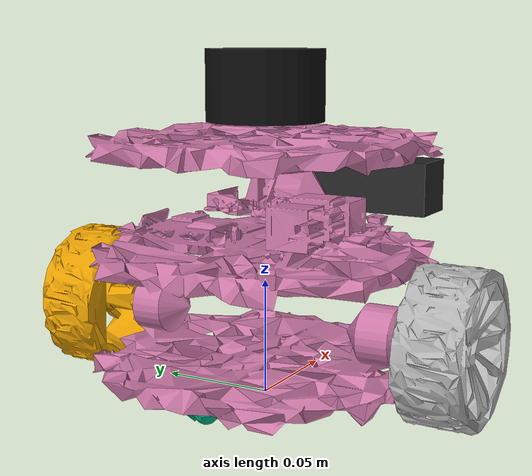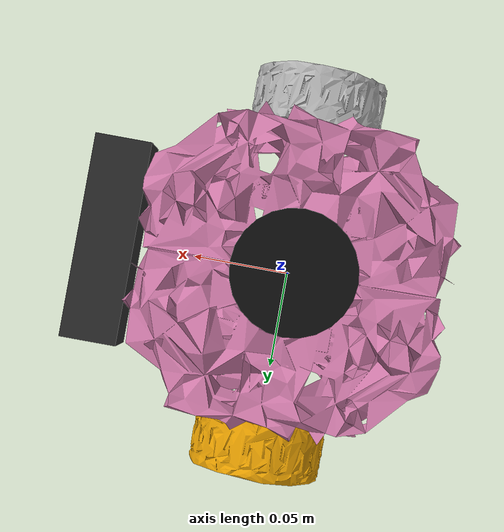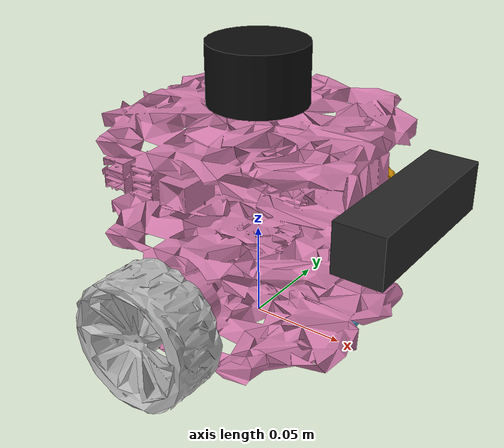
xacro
<?xml version="1.0"?>
<robot xmlns:xacro="http://www.ros.org/wiki/xacro" name="carebro">

    <!-- true  -> Gazebo Fortress (ROS 2 Humble, ign_ros2_control)
         false -> Gazebo Harmonic (ROS 2 Jazzy,  gz_ros2_control)   -->
    <xacro:arg name="is_ignition" default="true"/>

    <xacro:include filename="carebro_gazebo.xacro"/>
    <xacro:include filename="carebro_ros2_control.xacro"/>
    <xacro:include filename="carebro_lidar.xacro"/>
    <xacro:include filename="carebro_imu.xacro"/>
    <xacro:include filename="carebro_realsense.xacro"/>

    <link name="base_footprint"/>

    <!-- ===================== Base ===================== -->
    <link name="base_link">
        <visual>
            <origin rpy="0 0 0" xyz="0 0 0"/>
            <geometry>
                <mesh filename="package://carebro_description/meshes/base_link.stl"/>
            </geometry>
        </visual>
        <!-- Simple box instead of the 270k-triangle mesh: much faster physics.
             Bounding box of the mesh: x +-0.069, y +-0.079, z -0.024 .. 0.079 -->
        <collision>
            <origin rpy="0 0 0" xyz="0 0 0.0277"/>
            <geometry>
                <box size="0.14 0.16 0.1033"/>
            </geometry>
        </collision>
        <inertial>
            <origin xyz="0 0 0.04" rpy="0.0 0.25 0.3"/>
            <mass value="8.2573504e-01"/>
            <inertia ixx="2.2124416e-02" ixy="-1.2294101e-04" ixz="3.4938785e-04"
                     iyy="2.1193702e-02" iyz="-5.0120904e-05"
                     izz="2.0064271e-02"/>
        </inertial>
    </link>

    <joint name="base_joint" type="fixed">
        <parent link="base_footprint"/>
        <child link="base_link"/>
        <origin rpy="0 0 0" xyz="0 0 0.033"/>
    </joint>

    <!-- ===================== Wheels ===================== -->
    <link name="wheel_right_link">
        <visual>
            <origin rpy="1.57 0 0" xyz="0 0 0"/>
            <geometry>
                <mesh filename="package://carebro_description/meshes/wheel_right_link.stl"/>
            </geometry>
        </visual>
        <collision>
            <origin rpy="1.57 0 0" xyz="0 -0.015 0"/>
            <geometry>
                <sphere radius="0.033"/>
            </geometry>
        </collision>
        <inertial>
            <origin xyz="0 -0.014 0" rpy="0 0 0"/>
            <mass value="0.0530086090966721"/>
            <inertia ixx="1.88176298336665E-05" ixy="-4.8444933029987E-10" ixz="1.88163708851143E-08"
                     iyy="3.11510738647764E-05" iyz="-6.93560663069607E-11"
                     izz="1.8801969558182E-05"/>
        </inertial>
    </link>

    <joint name="wheel_right_joint" type="continuous">
        <parent link="base_link"/>
        <child link="wheel_right_link"/>
        <origin rpy="0 0 0" xyz="0 -0.07 0"/>
        <axis xyz="0 1 0"/>
    </joint>

    <link name="wheel_left_link">
        <visual>
            <origin rpy="-1.57 0 0" xyz="0 0 0"/>
            <geometry>
                <mesh filename="package://carebro_description/meshes/wheel_left_link.stl"/>
            </geometry>
        </visual>
        <collision>
            <origin rpy="1.57 0 0" xyz="0 0.015 0"/>
            <geometry>
                <sphere radius="0.033"/>
            </geometry>
        </collision>
        <inertial>
            <origin xyz="0 0.014 0" rpy="0 0 0"/>
            <mass value="0.0530086043217644"/>
            <inertia ixx="1.8792911368909E-05" ixy="3.31256392204584E-10" ixz="-1.14082001662767E-08"
                     iyy="3.11510738759073E-05" iyz="-3.60499245082192E-10"
                     izz="1.88266886146847E-05"/>
        </inertial>
    </link>

    <joint name="wheel_left_joint" type="continuous">
        <parent link="base_link"/>
        <child link="wheel_left_link"/>
        <origin rpy="0 0 0" xyz="0 0.07 0"/>
        <axis xyz="0 1 0"/>
    </joint>

    <!-- ===================== Casters ===================== -->
    <link name="caster_front_link">
        <visual>
            <origin rpy="0 0 0" xyz="0 0 0"/>
            <geometry>
                <mesh filename="package://carebro_description/meshes/caster_front_link.stl"/>
            </geometry>
        </visual>
        <collision>
            <origin rpy="0 0 0" xyz="0 0 0"/>
            <geometry>
                <sphere radius="0.005"/>
            </geometry>
        </collision>
        <inertial>
            <origin xyz="3.89968128948481E-07 2.40073004698083E-07 0.00219173397061506" rpy="0 0 0"/>
            <mass value="1.44379265037903E-06"/>
            <inertia ixx="7.23075276010246E-11" ixy="-6.10956883467859E-16" ixz="2.22849693525031E-15"
                     iyy="3.8713793085917E-11" iyz="2.93909858781952E-15"
                     izz="1.00967486676306E-10"/>
        </inertial>
    </link>

    <joint name="caster_front_joint" type="fixed">
        <parent link="base_link"/>
        <child link="caster_front_link"/>
        <origin rpy="0 0 0" xyz="0.04755 0 -0.0275"/>
    </joint>

    <link name="caster_rear_link">
        <visual>
            <origin rpy="0 0 0" xyz="0 0 0"/>
            <geometry>
                <mesh filename="package://carebro_description/meshes/caster_rear_link.stl"/>
            </geometry>
        </visual>
        <collision>
            <origin rpy="0 0 0" xyz="0 0 0"/>
            <geometry>
                <sphere radius="0.005"/>
            </geometry>
        </collision>
        <inertial>
            <origin xyz="3.8996812895542E-07 2.40073004698083E-07 0.00219173397061509" rpy="0 0 0"/>
            <mass value="1.44379265037902E-06"/>
            <inertia ixx="7.23075276010246E-11" ixy="-6.10956872363424E-16" ixz="2.22849693527207E-15"
                     iyy="3.87137930859167E-11" iyz="2.939098587861E-15"
                     izz="1.00967486676306E-10"/>
        </inertial>
    </link>

    <joint name="caster_rear_joint" type="fixed">
        <parent link="base_link"/>
        <child link="caster_rear_link"/>
        <origin rpy="0 0 0" xyz="-0.04755 0 -0.0275"/>
    </joint>
</robot>

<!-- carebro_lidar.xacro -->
<!-- 2D LiDAR mounted on top of base_link. Publishes sensor_msgs/LaserScan on /scan
     (bridged by carebro_gazebo/launch/sim.launch.py). -->
<robot xmlns:xacro="http://www.ros.org/wiki/xacro" name="carebro">

    <link name="lidar_link">
        <visual>
            <origin rpy="0 0 0" xyz="0 0 0"/>
            <geometry>
                <cylinder radius="0.025" length="0.03"/>
            </geometry>
            <material name="lidar_black">
                <color rgba="0.05 0.05 0.05 1.0"/>
            </material>
        </visual>
        <collision>
            <origin rpy="0 0 0" xyz="0 0 0"/>
            <geometry>
                <cylinder radius="0.025" length="0.03"/>
            </geometry>
        </collision>
        <inertial>
            <origin rpy="0 0 0" xyz="0 0 0"/>
            <mass value="0.05"/>
            <inertia ixx="1.156e-05" ixy="0.0" ixz="0.0"
                     iyy="1.156e-05" iyz="0.0"
                     izz="1.5625e-05"/>
        </inertial>
    </link>

    <!-- base_link top is at z = 0.079; the lidar sits just above it -->
    <joint name="lidar_joint" type="fixed">
        <parent link="base_link"/>
        <child link="lidar_link"/>
        <origin rpy="0 0 0" xyz="0 0 0.10"/>
    </joint>

    <gazebo reference="lidar_link">
        <sensor name="lidar" type="gpu_lidar">
            <always_on>true</always_on>
            <visualize>false</visualize>
            <update_rate>10</update_rate>
            <topic>scan</topic>
            <xacro:if value="$(arg is_ignition)">
                <ignition_frame_id>lidar_link</ignition_frame_id>
            </xacro:if>
            <xacro:unless value="$(arg is_ignition)">
                <gz_frame_id>lidar_link</gz_frame_id>
            </xacro:unless>
            <lidar>
                <scan>
                    <horizontal>
                        <samples>360</samples>
                        <resolution>1</resolution>
                        <min_angle>-3.14159</min_angle>
                        <max_angle>3.14159</max_angle>
                    </horizontal>
                </scan>
                <range>
                    <min>0.12</min>
                    <max>8.0</max>
                    <resolution>0.01</resolution>
                </range>
                <noise>
                    <type>gaussian</type>
                    <mean>0.0</mean>
                    <stddev>0.01</stddev>
                </noise>
            </lidar>
        </sensor>
    </gazebo>
</robot>

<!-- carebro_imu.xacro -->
<robot xmlns:xacro="http://www.ros.org/wiki/xacro" name="carebro">

    <link name="imu_link">
        <inertial>
            <origin rpy="0 0 0" xyz="0 0 0"/>
            <mass value="0.01"/>
            <inertia ixx="1.0e-6" ixy="0.0" ixz="0.0"
                     iyy="1.0e-6" iyz="0.0"
                     izz="1.0e-6"/>
        </inertial>
    </link>

    <joint name="imu_joint" type="fixed">
        <parent link="base_link"/>
        <child link="imu_link"/>
        <origin rpy="0 0 0" xyz="0 0 0.02"/>
    </joint>

    <gazebo reference="imu_link">
        <sensor name="imu_sensor" type="imu">
            <always_on>true</always_on>
            <update_rate>100</update_rate>
            <topic>imu/data_raw</topic>
            <xacro:if value="$(arg is_ignition)">
                <ignition_frame_id>imu_link</ignition_frame_id>
            </xacro:if>
            <xacro:unless value="$(arg is_ignition)">
                <gz_frame_id>imu_link</gz_frame_id>
            </xacro:unless>
            <imu>
                <angular_velocity>
                    <x><noise type="gaussian"><mean>0.0</mean><stddev>0.0003</stddev><bias_mean>0.00005</bias_mean><bias_stddev>0.00002</bias_stddev></noise></x>
                    <y><noise type="gaussian"><mean>0.0</mean><stddev>0.0003</stddev><bias_mean>0.00005</bias_mean><bias_stddev>0.00002</bias_stddev></noise></y>
                    <z><noise type="gaussian"><mean>0.0</mean><stddev>0.0003</stddev><bias_mean>0.00005</bias_mean><bias_stddev>0.00002</bias_stddev></noise></z>
                </angular_velocity>
                <linear_acceleration>
                    <x><noise type="gaussian"><mean>0.0</mean><stddev>0.02</stddev><bias_mean>0.02</bias_mean><bias_stddev>0.005</bias_stddev></noise></x>
                    <y><noise type="gaussian"><mean>0.0</mean><stddev>0.02</stddev><bias_mean>0.02</bias_mean><bias_stddev>0.005</bias_stddev></noise></y>
                    <z><noise type="gaussian"><mean>0.0</mean><stddev>0.02</stddev><bias_mean>0.02</bias_mean><bias_stddev>0.005</bias_stddev></noise></z>
                </linear_acceleration>
            </imu>
        </sensor>
    </gazebo>
</robot>

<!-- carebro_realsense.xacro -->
<robot xmlns:xacro="http://www.ros.org/wiki/xacro" name="carebro">

    <xacro:property name="cam_width"  value="640"/>
    <xacro:property name="cam_height" value="480"/>
    <xacro:property name="cam_rate"   value="15"/>
    <xacro:property name="cam_hfov"   value="1.2113"/>   <!-- 69.4 deg, D435 RGB -->
    <xacro:property name="cam_near"   value="0.3"/>      <!-- D435 min depth ~0.3 m -->
    <xacro:property name="cam_far"    value="6.0"/>
    <xacro:property name="cam_frame"  value="camera_link"/>

    <!-- body: 25 mm deep (x), 90 mm wide (y), 25 mm high (z), like a D435 -->
    <link name="camera_link">
        <visual>
            <geometry><box size="0.025 0.09 0.025"/></geometry>
            <material name="camera_grey"><color rgba="0.15 0.15 0.15 1.0"/></material>
        </visual>
        <inertial>
            <origin rpy="0 0 0" xyz="0 0 0"/>
            <mass value="0.072"/>
            <inertia ixx="4.0e-5" ixy="0.0" ixz="0.0"
                     iyy="1.0e-5" iyz="0.0"
                     izz="4.0e-5"/>
        </inertial>
    </link>

    <!-- mounted on the front face of the base, 8 cm above ground level -->
    <joint name="camera_joint" type="fixed">
        <parent link="base_link"/>
        <child link="camera_link"/>
        <origin rpy="0 0 0" xyz="0.082 0 0.05"/>
    </joint>

    <!-- optical frames (z forward, x right, y down) for vision / depth libraries -->
    <link name="camera_color_optical_frame"/>
    <joint name="camera_color_optical_joint" type="fixed">
        <parent link="camera_link"/>
        <child link="camera_color_optical_frame"/>
        <origin rpy="-1.5707963 0 -1.5707963" xyz="0 0 0"/>
    </joint>

    <link name="camera_depth_optical_frame"/>
    <joint name="camera_depth_optical_joint" type="fixed">
        <parent link="camera_link"/>
        <child link="camera_depth_optical_frame"/>
        <origin rpy="-1.5707963 0 -1.5707963" xyz="0 0 0"/>
    </joint>

    <gazebo reference="camera_link">
        <sensor name="realsense_rgbd" type="rgbd_camera">
            <always_on>true</always_on>
            <visualize>false</visualize>
            <update_rate>${cam_rate}</update_rate>
            <topic>camera</topic>
            <xacro:if value="$(arg is_ignition)">
                <ignition_frame_id>${cam_frame}</ignition_frame_id>
            </xacro:if>
            <xacro:unless value="$(arg is_ignition)">
                <gz_frame_id>${cam_frame}</gz_frame_id>
            </xacro:unless>
            <camera>
                <horizontal_fov>${cam_hfov}</horizontal_fov>
                <image>
                    <width>${cam_width}</width>
                    <height>${cam_height}</height>
                    <format>R8G8B8</format>
                </image>
                <clip>
                    <near>${cam_near}</near>
                    <far>${cam_far}</far>
                </clip>
                <depth_camera>
                    <clip>
                        <near>${cam_near}</near>
                        <far>${cam_far}</far>
                    </clip>
                </depth_camera>
            </camera>
        </sensor>
    </gazebo>
</robot>
